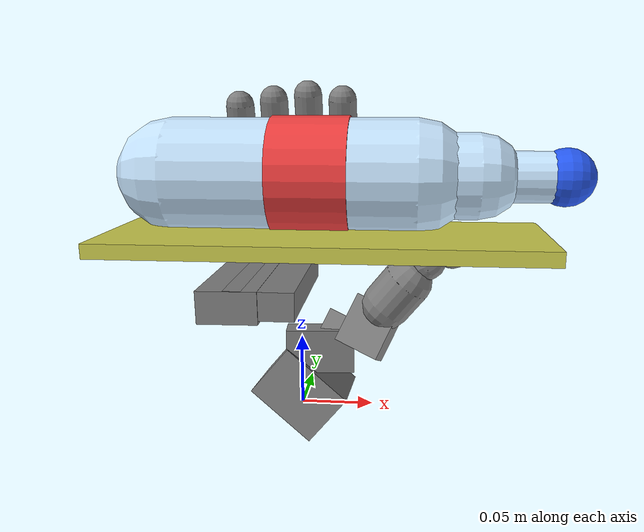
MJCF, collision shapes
<mujoco model="v2_scene_grasp_bottle_550ml">
  <size nconmax="120" />
  <include file="right_hand_v2_vertical_bottle.xml" />
  <include file="empty_bottle_550ml.xml" />

  <statistic center="-0.125 0.0 0.040" extent="0.65" meansize="0.02" />

  <visual>
    <headlight diffuse=".8 .8 .8" ambient=".25 .25 .25" specular="1 1 1" />
    <rgba force="1 0 0 1" />
    <global azimuth="118" elevation="-18" />
  </visual>

  <asset>
    <texture type="skybox" builtin="gradient" rgb1="1 1 1" rgb2="1 1 1" width="800" height="800" />
    <texture type="2d" name="groundplane" builtin="checker" mark="edge" rgb1="1 1 1" rgb2="1 1 1" markrgb="0 0 0" width="300" height="300" />
    <material name="groundplane" texture="groundplane" texuniform="true" texrepeat="5 5" reflectance="0" />
    <material name="support_pad" rgba="0.80 0.80 0.30 0.32" />
  </asset>

  <worldbody>
    <camera name="side" pos="-0.350 -0.205 0.255" xyaxes="0.52 -0.854 0 0.365 0.222 0.904" />
    <camera name="palm" pos="-0.395 0.0 0.205" xyaxes="0 -1 0 0.358 0 0.934" />

    <geom
        name="floor"
        pos="0 0 -0.25"
        size="0 0 0.01"
        type="plane"
        material="groundplane"
        contype="2"
        conaffinity="2"
    />

    <!-- 横放瓶支撑台。z 位置对齐主瓶身底部，避免 reset 时先下落一小段。 -->
    <body name="cube_support" mocap="true" pos="0.028 -0.090 0.1385">
      <geom
          name="cube_support_geom"
          type="box"
          size="0.120 0.040 0.004"
          pos="0 0 0"
          material="support_pad"
          contype="4"
          conaffinity="0"
      />
    </body>
  </worldbody>

  <sensor>
    <framepos name="cube_position" objtype="body" objname="cube" />
    <framequat name="cube_orientation" objtype="body" objname="cube" />
    <framelinvel name="cube_linvel" objtype="body" objname="cube" />
    <frameangvel name="cube_angvel" objtype="body" objname="cube" />
    <framepos name="bottle_position" objtype="body" objname="cube" />
    <framequat name="bottle_orientation" objtype="body" objname="cube" />
    <framelinvel name="bottle_linvel" objtype="body" objname="cube" />
    <frameangvel name="bottle_angvel" objtype="body" objname="cube" />
    <framepos name="cube_grasp_band_position" objtype="site" objname="bottle_grasp_band" />
    <framepos name="palm_position" objtype="site" objname="grasp_site" />
    <framepos name="th_tip_position" objtype="site" objname="th_tip" reftype="site" refname="grasp_site" />
    <framepos name="if_tip_position" objtype="site" objname="if_tip" reftype="site" refname="grasp_site" />
    <framepos name="mf_tip_position" objtype="site" objname="mf_tip" reftype="site" refname="grasp_site" />
    <framepos name="rf_tip_position" objtype="site" objname="rf_tip" reftype="site" refname="grasp_site" />
    <framepos name="pf_tip_position" objtype="site" objname="pf_tip" reftype="site" refname="grasp_site" />
  </sensor>

  <keyframe>
    <!-- Bottle B02: 放开四指预抓取，避免 reset 初始穿模导致大接触力爆炸。 -->
    <key
        name="home"
        qpos="0.3895 0.3603 0.3990 0.3691 0.3705 0.3427 0.3420 0.3164 1.20 0.1400 0.24     0.028 -0.090 0.175 0.70710678 0 0.70710678 0"
        ctrl="1.20 0.24 0.3895 0.3990 0.3705 0.3420"
        mpos="0.028 -0.090 0.1385"
        mquat="1 0 0 0"
    />
  </keyframe>
</mujoco>

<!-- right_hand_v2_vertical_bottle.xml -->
<mujoco model="Lingxi_Hand_V2_Right">
  <compiler angle="radian" meshdir="/home/ll/SRTP/Aero-Hand/handinformation/URDF/右/qbr/meshes/" />
  <option timestep="0.01" integrator="Euler" iterations="20" ls_iterations="20">
    <flag eulerdamp="disable" />
  </option>
  <custom>
    <numeric data="80" name="max_contact_points" />
    <numeric data="50" name="max_geom_pairs" />
  </custom>
  <asset>
    <material name="black" rgba="0.2 0.2 0.2 1" />
    <material name="gray" rgba="0.5 0.5 0.5 1" />
    <material name="white" rgba="0.529 0.549 0.549 1" />
    <material name="rubber" rgba="0.3 0.3 0.3 1" />
    <mesh name="v2_palm" file="v2_base_link.STL" />
    <mesh name="v2_thumb_base" file="link1.STL" />
    <mesh name="v2_thumb_mid" file="link2.STL" />
    <mesh name="v2_thumb_tip" file="link3.STL" />
    <mesh name="v2_index_proximal" file="link4.STL" />
    <mesh name="v2_index_distal" file="link5.STL" />
    <mesh name="v2_middle_proximal" file="link6.STL" />
    <mesh name="v2_middle_distal" file="link7.STL" />
    <mesh name="v2_ring_proximal" file="link8.STL" />
    <mesh name="v2_ring_distal" file="link9.STL" />
    <mesh name="v2_pinky_proximal" file="link10.STL" />
    <mesh name="v2_pinky_distal" file="link11.STL" />
  </asset>
  <default>
    <default class="v2_hand">
      <site group="4" />
      <default class="visual">
        <geom group="2" type="mesh" contype="0" conaffinity="0" density="0" material="white" />
      </default>
      <joint damping="0.02" armature="0.001559127" frictionloss="0.02" />
      <position kp="3.0" />
      <default class="mcp">
        <joint range="0 1.3963" damping="0.1" />
        <position ctrlrange="0 1.40" />
      </default>
      <default class="pip">
        <joint range="0 1.2915" damping="0.05" />
      </default>
      <default class="thumb_cmc">
        <joint range="0 1.3788" damping="0.1" />
        <position ctrlrange="0 1.38" />
      </default>
      <default class="thumb_flex">
        <joint range="0 0.5236" damping="0.05" />
      </default>
      <default class="thumb_mcp">
        <joint range="0 0.7854" damping="0.05" />
        <position ctrlrange="0 0.79" />
      </default>
    </default>
  </default>
  <contact>
    <exclude body1="palm" body2="right_index_proximal" />
    <exclude body1="palm" body2="right_middle_proximal" />
    <exclude body1="palm" body2="right_ring_proximal" />
    <exclude body1="palm" body2="right_pinky_proximal" />
    <exclude body1="palm" body2="right_thumb_base" />
    <exclude body1="palm" body2="right_thumb_mid" />
    <exclude body1="palm" body2="right_ring_distal" />
    <exclude body1="palm" body2="right_pinky_distal" />
    <exclude body1="v2_mount" body2="right_index_proximal" />
    <exclude body1="v2_mount" body2="right_middle_proximal" />
    <exclude body1="v2_mount" body2="right_ring_proximal" />
    <exclude body1="v2_mount" body2="right_pinky_proximal" />
    <exclude body1="v2_mount" body2="right_thumb_base" />
    <exclude body1="right_index_proximal" body2="right_index_distal" />
    <exclude body1="right_middle_proximal" body2="right_middle_distal" />
    <exclude body1="right_ring_proximal" body2="right_ring_distal" />
    <exclude body1="right_pinky_proximal" body2="right_pinky_distal" />
    <exclude body1="right_thumb_base" body2="right_thumb_mid" />
    <exclude body1="right_thumb_mid" body2="right_thumb_tip" />
    <exclude body1="right_index_proximal" body2="right_middle_proximal" />
    <exclude body1="right_index_distal" body2="right_middle_distal" />
    <exclude body1="right_middle_proximal" body2="right_ring_proximal" />
    <exclude body1="right_middle_distal" body2="right_ring_distal" />
    <exclude body1="right_ring_proximal" body2="right_pinky_proximal" />
    <exclude body1="right_ring_distal" body2="right_pinky_distal" />
    <exclude body1="right_index_proximal" body2="right_middle_distal" />
    <exclude body1="right_middle_proximal" body2="right_ring_distal" />
    <exclude body1="right_ring_proximal" body2="right_pinky_distal" />
    <exclude body1="right_middle_proximal" body2="right_index_distal" />
    <exclude body1="right_ring_proximal" body2="right_middle_distal" />
    <exclude body1="right_pinky_proximal" body2="right_ring_distal" />
  </contact>
  <worldbody>
    <body name="v2_mount" pos="0 0 0" euler="1.5708 0 0" childclass="v2_hand">
      <body name="palm" pos="0 0 0">
        <geom type="mesh" mesh="v2_palm" class="visual" />
        <geom name="palm_capsule_000" type="box" size="0.020037 0.025610 0.026631" pos="0.001902 0.013911 0.001441" quat="0.293817 0.302340 -0.672131 -0.608689" group="3" friction="1.25" solref="0.008 1.1" solimp="0.95 0.995 0.0005" />
        <geom name="palm_capsule_001" type="box" size="0.010722 0.019572 0.056414" pos="-0.038051 0.087840 0.002752" quat="0.709679 0 0 -0.704525" group="3" friction="1.25" solref="0.008 1.1" solimp="0.95 0.995 0.0005" />
        <geom name="palm_capsule_002" type="box" size="0.008102 0.015041 0.023052" pos="0.014905 0.046351 0.013455" quat="-0.735321 0.000192 0.677719 -0.000031" group="3" friction="1.25" solref="0.008 1.1" solimp="0.95 0.995 0.0005" />
        <geom name="palm_capsule_003" type="box" size="0.009382 0.022468 0.058021" pos="-0.017946 0.089157 0.000411" quat="-0.704114 0 0 0.710087" group="3" friction="1.25" solref="0.008 1.1" solimp="0.95 0.995 0.0005" />
        <site name="grasp_site" pos="0 0.085 -0.020" group="4" />
        <body name="right_index_proximal" pos="0.034276 0.1374 0.001">
          <inertial pos="-0.003657 0.0162 0.000274" mass="0.0686" diaginertia="7.49e-06 7.33e-06 2.82e-06" />
          <joint name="right_index_mcp" axis="1 0 0" class="mcp" />
          <geom type="mesh" mesh="v2_index_proximal" class="visual" />
          <geom name="right_index_proximal_capsule_000" type="capsule" group="3" friction="1.5" solref="0.005 1.0" solimp="0.97 0.999 0.0001" fromto="-0.003733 0.008071 0.003736 -0.003793 0.026509 -0.000839" size="0.010229" />
          <body name="right_index_distal" pos="0.00084336 0.031988 -0.0026473">
            <inertial pos="-0.00450 0.0246 0.00927" mass="0.0755" diaginertia="1.58e-05 1.57e-05 2.47e-06" />
            <joint name="right_index_pip" axis="1 0 0" class="pip" />
            <geom type="mesh" mesh="v2_index_distal" class="visual" />
            <geom name="right_index_distal_capsule_000" type="capsule" group="3" friction="1.5" solref="0.005 1.0" solimp="0.97 0.999 0.0001" fromto="-0.004533 0.003643 0.004505 -0.004547 0.015148 0.007211" size="0.008789" />
            <geom name="right_index_distal_capsule_001" type="capsule" group="3" friction="1.5" solref="0.005 1.0" solimp="0.97 0.999 0.0001" fromto="-0.004569 0.032374 0.011263 -0.004584 0.043669 0.013920" size="0.008894" />
            <site name="if_tip" pos="-0.004 0.052 0.005" group="4" />
            <site name="if_tip_t00" pos="-0.007 0.042 0.005" size="0.003" />
            <site name="if_tip_t01" pos="-0.005 0.042 0.005" size="0.003" />
            <site name="if_tip_t02" pos="-0.003 0.042 0.005" size="0.003" />
            <site name="if_tip_t03" pos="-0.001 0.042 0.005" size="0.003" />
            <site name="if_tip_t04" pos="-0.007 0.045 0.005" size="0.003" />
            <site name="if_tip_t05" pos="-0.005 0.045 0.005" size="0.003" />
            <site name="if_tip_t06" pos="-0.003 0.045 0.005" size="0.003" />
            <site name="if_tip_t07" pos="-0.001 0.045 0.005" size="0.003" />
            <site name="if_tip_t08" pos="-0.007 0.048 0.005" size="0.003" />
            <site name="if_tip_t09" pos="-0.005 0.048 0.005" size="0.003" />
            <site name="if_tip_t10" pos="-0.003 0.048 0.005" size="0.003" />
            <site name="if_tip_t11" pos="-0.001 0.048 0.005" size="0.003" />
            <site name="if_tip_t12" pos="-0.007 0.051 0.005" size="0.003" />
            <site name="if_tip_t13" pos="-0.005 0.051 0.005" size="0.003" />
            <site name="if_tip_t14" pos="-0.003 0.051 0.005" size="0.003" />
            <site name="if_tip_t15" pos="-0.001 0.051 0.005" size="0.003" />
          </body>
        </body>
        <body name="right_middle_proximal" pos="0.012276 0.14055 0.001">
          <inertial pos="-0.003657 0.0162 0.000274" mass="0.0686" diaginertia="7.49e-06 7.33e-06 2.82e-06" />
          <joint name="right_middle_mcp" axis="1 0 0" class="mcp" />
          <geom type="mesh" mesh="v2_middle_proximal" class="visual" />
          <geom name="right_middle_proximal_capsule_000" type="capsule" group="3" friction="1.5" solref="0.005 1.0" solimp="0.97 0.999 0.0001" fromto="-0.003733 0.008071 0.003736 -0.003793 0.026509 -0.000839" size="0.010229" />
          <body name="right_middle_distal" pos="0 0.02968 -0.0024563">
            <inertial pos="-0.00366 0.0269 0.00908" mass="0.0755" diaginertia="1.58e-05 1.57e-05 2.47e-06" />
            <joint name="right_middle_pip" axis="1 0 0" class="pip" />
            <geom type="mesh" mesh="v2_middle_distal" class="visual" />
            <geom name="right_middle_distal_capsule_000" type="capsule" group="3" friction="1.5" solref="0.005 1.0" solimp="0.97 0.999 0.0001" fromto="-0.003689 0.005951 0.004314 -0.003704 0.017455 0.007020" size="0.008789" />
            <geom name="right_middle_distal_capsule_001" type="capsule" group="3" friction="1.5" solref="0.005 1.0" solimp="0.97 0.999 0.0001" fromto="-0.003726 0.034682 0.011072 -0.003740 0.045977 0.013729" size="0.008894" />
            <site name="mf_tip" pos="-0.004 0.052 0.005" group="4" />
            <site name="mf_tip_t00" pos="-0.007 0.042 0.005" size="0.003" />
            <site name="mf_tip_t01" pos="-0.005 0.042 0.005" size="0.003" />
            <site name="mf_tip_t02" pos="-0.003 0.042 0.005" size="0.003" />
            <site name="mf_tip_t03" pos="-0.001 0.042 0.005" size="0.003" />
            <site name="mf_tip_t04" pos="-0.007 0.045 0.005" size="0.003" />
            <site name="mf_tip_t05" pos="-0.005 0.045 0.005" size="0.003" />
            <site name="mf_tip_t06" pos="-0.003 0.045 0.005" size="0.003" />
            <site name="mf_tip_t07" pos="-0.001 0.045 0.005" size="0.003" />
            <site name="mf_tip_t08" pos="-0.007 0.048 0.005" size="0.003" />
            <site name="mf_tip_t09" pos="-0.005 0.048 0.005" size="0.003" />
            <site name="mf_tip_t10" pos="-0.003 0.048 0.005" size="0.003" />
            <site name="mf_tip_t11" pos="-0.001 0.048 0.005" size="0.003" />
            <site name="mf_tip_t12" pos="-0.007 0.051 0.005" size="0.003" />
            <site name="mf_tip_t13" pos="-0.005 0.051 0.005" size="0.003" />
            <site name="mf_tip_t14" pos="-0.003 0.051 0.005" size="0.003" />
            <site name="mf_tip_t15" pos="-0.001 0.051 0.005" size="0.003" />
          </body>
        </body>
        <body name="right_ring_proximal" pos="-0.009724 0.1374 0.001">
          <inertial pos="-0.003657 0.0162 0.000274" mass="0.0686" diaginertia="7.49e-06 7.33e-06 2.82e-06" />
          <joint name="right_ring_mcp" axis="1 0 0" class="mcp" />
          <geom type="mesh" mesh="v2_ring_proximal" class="visual" />
          <geom name="right_ring_proximal_capsule_000" type="capsule" group="3" friction="1.5" solref="0.005 1.0" solimp="0.97 0.999 0.0001" fromto="-0.003733 0.008071 0.003736 -0.003793 0.026509 -0.000839" size="0.010229" />
          <body name="right_ring_distal" pos="0 0.02968 -0.0024563">
            <inertial pos="-0.00366 0.0269 0.00908" mass="0.0755" diaginertia="1.58e-05 1.57e-05 2.47e-06" />
            <joint name="right_ring_pip" axis="1 0 0" class="pip" />
            <geom type="mesh" mesh="v2_ring_distal" class="visual" />
            <geom name="right_ring_distal_capsule_000" type="capsule" group="3" friction="1.5" solref="0.005 1.0" solimp="0.97 0.999 0.0001" fromto="-0.003689 0.005951 0.004314 -0.003704 0.017455 0.007020" size="0.008789" />
            <geom name="right_ring_distal_capsule_001" type="capsule" group="3" friction="1.5" solref="0.005 1.0" solimp="0.97 0.999 0.0001" fromto="-0.003726 0.034682 0.011072 -0.003740 0.045977 0.013729" size="0.008894" />
            <site name="rf_tip" pos="-0.004 0.052 0.005" group="4" />
            <site name="rf_tip_t00" pos="-0.007 0.042 0.005" size="0.003" />
            <site name="rf_tip_t01" pos="-0.005 0.042 0.005" size="0.003" />
            <site name="rf_tip_t02" pos="-0.003 0.042 0.005" size="0.003" />
            <site name="rf_tip_t03" pos="-0.001 0.042 0.005" size="0.003" />
            <site name="rf_tip_t04" pos="-0.007 0.045 0.005" size="0.003" />
            <site name="rf_tip_t05" pos="-0.005 0.045 0.005" size="0.003" />
            <site name="rf_tip_t06" pos="-0.003 0.045 0.005" size="0.003" />
            <site name="rf_tip_t07" pos="-0.001 0.045 0.005" size="0.003" />
            <site name="rf_tip_t08" pos="-0.007 0.048 0.005" size="0.003" />
            <site name="rf_tip_t09" pos="-0.005 0.048 0.005" size="0.003" />
            <site name="rf_tip_t10" pos="-0.003 0.048 0.005" size="0.003" />
            <site name="rf_tip_t11" pos="-0.001 0.048 0.005" size="0.003" />
            <site name="rf_tip_t12" pos="-0.007 0.051 0.005" size="0.003" />
            <site name="rf_tip_t13" pos="-0.005 0.051 0.005" size="0.003" />
            <site name="rf_tip_t14" pos="-0.003 0.051 0.005" size="0.003" />
            <site name="rf_tip_t15" pos="-0.001 0.051 0.005" size="0.003" />
          </body>
        </body>
        <body name="right_pinky_proximal" pos="-0.031724 0.13417 0.001">
          <inertial pos="-0.003657 0.0162 0.000274" mass="0.0686" diaginertia="7.49e-06 7.33e-06 2.82e-06" />
          <joint name="right_pinky_mcp" axis="1 0 0" class="mcp" />
          <geom type="mesh" mesh="v2_pinky_proximal" class="visual" />
          <geom name="right_pinky_proximal_capsule_000" type="capsule" group="3" friction="1.5" solref="0.005 1.0" solimp="0.97 0.999 0.0001" fromto="-0.003733 0.008071 0.003736 -0.003793 0.026509 -0.000839" size="0.010229" />
          <body name="right_pinky_distal" pos="0.00084336 0.031988 -0.0026473">
            <inertial pos="-0.00450 0.0246 0.00927" mass="0.0755" diaginertia="1.58e-05 1.57e-05 2.47e-06" />
            <joint name="right_pinky_pip" axis="1 0 0" class="pip" />
            <geom type="mesh" mesh="v2_pinky_distal" class="visual" />
            <geom name="right_pinky_distal_capsule_000" type="capsule" group="3" friction="1.5" solref="0.005 1.0" solimp="0.97 0.999 0.0001" fromto="-0.004533 0.003643 0.004505 -0.004547 0.015148 0.007211" size="0.008789" />
            <geom name="right_pinky_distal_capsule_001" type="capsule" group="3" friction="1.5" solref="0.005 1.0" solimp="0.97 0.999 0.0001" fromto="-0.004569 0.032374 0.011263 -0.004584 0.043669 0.013920" size="0.008894" />
            <site name="pf_tip" pos="-0.004 0.052 0.005" group="4" />
            <site name="pf_tip_t00" pos="-0.007 0.042 0.005" size="0.003" />
            <site name="pf_tip_t01" pos="-0.005 0.042 0.005" size="0.003" />
            <site name="pf_tip_t02" pos="-0.003 0.042 0.005" size="0.003" />
            <site name="pf_tip_t03" pos="-0.001 0.042 0.005" size="0.003" />
            <site name="pf_tip_t04" pos="-0.007 0.045 0.005" size="0.003" />
            <site name="pf_tip_t05" pos="-0.005 0.045 0.005" size="0.003" />
            <site name="pf_tip_t06" pos="-0.003 0.045 0.005" size="0.003" />
            <site name="pf_tip_t07" pos="-0.001 0.045 0.005" size="0.003" />
            <site name="pf_tip_t08" pos="-0.007 0.048 0.005" size="0.003" />
            <site name="pf_tip_t09" pos="-0.005 0.048 0.005" size="0.003" />
            <site name="pf_tip_t10" pos="-0.003 0.048 0.005" size="0.003" />
            <site name="pf_tip_t11" pos="-0.001 0.048 0.005" size="0.003" />
            <site name="pf_tip_t12" pos="-0.007 0.051 0.005" size="0.003" />
            <site name="pf_tip_t13" pos="-0.005 0.051 0.005" size="0.003" />
            <site name="pf_tip_t14" pos="-0.003 0.051 0.005" size="0.003" />
            <site name="pf_tip_t15" pos="-0.001 0.051 0.005" size="0.003" />
          </body>
        </body>
        <body name="right_thumb_base" pos="0.028693 0.069894 0.010325" quat="0.999048 0 0 0.043619">
          <inertial pos="0.013775 -0.009814 0.002084" mass="0.08488" diaginertia="1.03e-05 9.49e-06 5.67e-06" />
          <joint name="right_thumb_cmc_abd" axis="0 -1 0" class="thumb_cmc" />
          <geom type="mesh" mesh="v2_thumb_base" class="visual" />
          <geom name="right_thumb_base_capsule_000" type="box" size="0.015325 0.013443 0.017225" pos="0.019292 -0.009593 0.002956" quat="0.237188 0.108156 0.803420 0.535313" group="3" friction="1.5" solref="0.005 1.0" solimp="0.97 0.999 0.0001" />
          <geom name="right_thumb_base_capsule_001" type="box" size="0.008344 0.008646 0.008403" pos="-0.002984 -0.008688 -0.002984" quat="0.237188 0.108156 0.803420 0.535313" group="3" friction="1.5" solref="0.005 1.0" solimp="0.97 0.999 0.0001" />
          <body name="right_thumb_mid" pos="0.02679 -0.0045 0.0045976" quat="0.641137 -0.027549 -0.766225 -0.032924">
            <inertial pos="0 0.01832 -0.01287" mass="0.18907" diaginertia="4.62e-05 4.25e-05 1.60e-05" />
            <joint name="right_thumb_cmc_flex" axis="1 0 0" class="thumb_flex" />
            <geom type="mesh" mesh="v2_thumb_mid" class="visual" />
            <geom name="right_thumb_mid_capsule_000" type="capsule" group="3" friction="1.5" solref="0.005 1.0" solimp="0.97 0.999 0.0001" fromto="0.000259 0.029240 -0.018406 0.000155 0.011437 -0.004140" size="0.016560" />
            <body name="right_thumb_tip" pos="0.0055478 0.0413 -0.024172">
              <inertial pos="-0.005551 0.005391 -0.014448" mass="0.07660" diaginertia="8.30e-06 8.00e-06 4.06e-06" />
              <joint name="right_thumb_mcp" axis="1 0 0" class="thumb_mcp" />
              <geom type="mesh" mesh="v2_thumb_tip" class="visual" />
              <geom name="right_thumb_tip_capsule_000" type="capsule" group="3" friction="1.5" solref="0.005 1.0" solimp="0.97 0.999 0.0001" fromto="-0.005496 0.010877 -0.025065 -0.005505 0.009894 -0.023324" size="0.011363" />
              <geom name="right_thumb_tip_capsule_001" type="capsule" group="3" friction="1.5" solref="0.005 1.0" solimp="0.97 0.999 0.0001" fromto="-0.005586 0.001141 -0.007809 -0.005595 0.000159 -0.006067" size="0.010936" />
              <site name="th_tip" pos="-0.006 0.021 -0.020" group="4" />
              <site name="th_tip_t00" pos="-0.010 0.008 -0.020" size="0.003" />
              <site name="th_tip_t01" pos="-0.007 0.008 -0.020" size="0.003" />
              <site name="th_tip_t02" pos="-0.004 0.008 -0.020" size="0.003" />
              <site name="th_tip_t03" pos="-0.001 0.008 -0.020" size="0.003" />
              <site name="th_tip_t04" pos="-0.010 0.012 -0.020" size="0.003" />
              <site name="th_tip_t05" pos="-0.007 0.012 -0.020" size="0.003" />
              <site name="th_tip_t06" pos="-0.004 0.012 -0.020" size="0.003" />
              <site name="th_tip_t07" pos="-0.001 0.012 -0.020" size="0.003" />
              <site name="th_tip_t08" pos="-0.010 0.016 -0.020" size="0.003" />
              <site name="th_tip_t09" pos="-0.007 0.016 -0.020" size="0.003" />
              <site name="th_tip_t10" pos="-0.004 0.016 -0.020" size="0.003" />
              <site name="th_tip_t11" pos="-0.001 0.016 -0.020" size="0.003" />
              <site name="th_tip_t12" pos="-0.010 0.020 -0.020" size="0.003" />
              <site name="th_tip_t13" pos="-0.007 0.020 -0.020" size="0.003" />
              <site name="th_tip_t14" pos="-0.004 0.020 -0.020" size="0.003" />
              <site name="th_tip_t15" pos="-0.001 0.020 -0.020" size="0.003" />
            </body>
          </body>
        </body>
      </body>
    </body>
  </worldbody>
  <actuator>
    <position name="hw_thumb_rot" joint="right_thumb_cmc_abd" class="thumb_cmc" kp="5" />
    <position name="hw_thumb_flex" joint="right_thumb_mcp" class="thumb_mcp" kp="3" />
    <position name="hw_index" joint="right_index_mcp" class="mcp" kp="3" />
    <position name="hw_middle" joint="right_middle_mcp" class="mcp" kp="3" />
    <position name="hw_ring" joint="right_ring_mcp" class="mcp" kp="3" />
    <position name="hw_pinky" joint="right_pinky_mcp" class="mcp" kp="3" />
  </actuator>
  <sensor>
    <jointpos name="hw_pos_thumb_rot" joint="right_thumb_cmc_abd" />
    <jointpos name="hw_pos_thumb_flex" joint="right_thumb_mcp" />
    <jointpos name="hw_pos_index" joint="right_index_mcp" />
    <jointpos name="hw_pos_middle" joint="right_middle_mcp" />
    <jointpos name="hw_pos_ring" joint="right_ring_mcp" />
    <jointpos name="hw_pos_pinky" joint="right_pinky_mcp" />
    <touch name="hw_tip_frc_thumb_00" site="th_tip_t00" />
    <touch name="hw_tip_frc_thumb_01" site="th_tip_t01" />
    <touch name="hw_tip_frc_thumb_02" site="th_tip_t02" />
    <touch name="hw_tip_frc_thumb_03" site="th_tip_t03" />
    <touch name="hw_tip_frc_thumb_04" site="th_tip_t04" />
    <touch name="hw_tip_frc_thumb_05" site="th_tip_t05" />
    <touch name="hw_tip_frc_thumb_06" site="th_tip_t06" />
    <touch name="hw_tip_frc_thumb_07" site="th_tip_t07" />
    <touch name="hw_tip_frc_thumb_08" site="th_tip_t08" />
    <touch name="hw_tip_frc_thumb_09" site="th_tip_t09" />
    <touch name="hw_tip_frc_thumb_10" site="th_tip_t10" />
    <touch name="hw_tip_frc_thumb_11" site="th_tip_t11" />
    <touch name="hw_tip_frc_thumb_12" site="th_tip_t12" />
    <touch name="hw_tip_frc_thumb_13" site="th_tip_t13" />
    <touch name="hw_tip_frc_thumb_14" site="th_tip_t14" />
    <touch name="hw_tip_frc_thumb_15" site="th_tip_t15" />
    <touch name="hw_tip_frc_index_00" site="if_tip_t00" />
    <touch name="hw_tip_frc_index_01" site="if_tip_t01" />
    <touch name="hw_tip_frc_index_02" site="if_tip_t02" />
    <touch name="hw_tip_frc_index_03" site="if_tip_t03" />
    <touch name="hw_tip_frc_index_04" site="if_tip_t04" />
    <touch name="hw_tip_frc_index_05" site="if_tip_t05" />
    <touch name="hw_tip_frc_index_06" site="if_tip_t06" />
    <touch name="hw_tip_frc_index_07" site="if_tip_t07" />
    <touch name="hw_tip_frc_index_08" site="if_tip_t08" />
    <touch name="hw_tip_frc_index_09" site="if_tip_t09" />
    <touch name="hw_tip_frc_index_10" site="if_tip_t10" />
    <touch name="hw_tip_frc_index_11" site="if_tip_t11" />
    <touch name="hw_tip_frc_index_12" site="if_tip_t12" />
    <touch name="hw_tip_frc_index_13" site="if_tip_t13" />
    <touch name="hw_tip_frc_index_14" site="if_tip_t14" />
    <touch name="hw_tip_frc_index_15" site="if_tip_t15" />
    <touch name="hw_tip_frc_middle_00" site="mf_tip_t00" />
    <touch name="hw_tip_frc_middle_01" site="mf_tip_t01" />
    <touch name="hw_tip_frc_middle_02" site="mf_tip_t02" />
    <touch name="hw_tip_frc_middle_03" site="mf_tip_t03" />
    <touch name="hw_tip_frc_middle_04" site="mf_tip_t04" />
    <touch name="hw_tip_frc_middle_05" site="mf_tip_t05" />
    <touch name="hw_tip_frc_middle_06" site="mf_tip_t06" />
    <touch name="hw_tip_frc_middle_07" site="mf_tip_t07" />
    <touch name="hw_tip_frc_middle_08" site="mf_tip_t08" />
    <touch name="hw_tip_frc_middle_09" site="mf_tip_t09" />
    <touch name="hw_tip_frc_middle_10" site="mf_tip_t10" />
    <touch name="hw_tip_frc_middle_11" site="mf_tip_t11" />
    <touch name="hw_tip_frc_middle_12" site="mf_tip_t12" />
    <touch name="hw_tip_frc_middle_13" site="mf_tip_t13" />
    <touch name="hw_tip_frc_middle_14" site="mf_tip_t14" />
    <touch name="hw_tip_frc_middle_15" site="mf_tip_t15" />
    <touch name="hw_tip_frc_ring_00" site="rf_tip_t00" />
    <touch name="hw_tip_frc_ring_01" site="rf_tip_t01" />
    <touch name="hw_tip_frc_ring_02" site="rf_tip_t02" />
    <touch name="hw_tip_frc_ring_03" site="rf_tip_t03" />
    <touch name="hw_tip_frc_ring_04" site="rf_tip_t04" />
    <touch name="hw_tip_frc_ring_05" site="rf_tip_t05" />
    <touch name="hw_tip_frc_ring_06" site="rf_tip_t06" />
    <touch name="hw_tip_frc_ring_07" site="rf_tip_t07" />
    <touch name="hw_tip_frc_ring_08" site="rf_tip_t08" />
    <touch name="hw_tip_frc_ring_09" site="rf_tip_t09" />
    <touch name="hw_tip_frc_ring_10" site="rf_tip_t10" />
    <touch name="hw_tip_frc_ring_11" site="rf_tip_t11" />
    <touch name="hw_tip_frc_ring_12" site="rf_tip_t12" />
    <touch name="hw_tip_frc_ring_13" site="rf_tip_t13" />
    <touch name="hw_tip_frc_ring_14" site="rf_tip_t14" />
    <touch name="hw_tip_frc_ring_15" site="rf_tip_t15" />
    <touch name="hw_tip_frc_pinky_00" site="pf_tip_t00" />
    <touch name="hw_tip_frc_pinky_01" site="pf_tip_t01" />
    <touch name="hw_tip_frc_pinky_02" site="pf_tip_t02" />
    <touch name="hw_tip_frc_pinky_03" site="pf_tip_t03" />
    <touch name="hw_tip_frc_pinky_04" site="pf_tip_t04" />
    <touch name="hw_tip_frc_pinky_05" site="pf_tip_t05" />
    <touch name="hw_tip_frc_pinky_06" site="pf_tip_t06" />
    <touch name="hw_tip_frc_pinky_07" site="pf_tip_t07" />
    <touch name="hw_tip_frc_pinky_08" site="pf_tip_t08" />
    <touch name="hw_tip_frc_pinky_09" site="pf_tip_t09" />
    <touch name="hw_tip_frc_pinky_10" site="pf_tip_t10" />
    <touch name="hw_tip_frc_pinky_11" site="pf_tip_t11" />
    <touch name="hw_tip_frc_pinky_12" site="pf_tip_t12" />
    <touch name="hw_tip_frc_pinky_13" site="pf_tip_t13" />
    <touch name="hw_tip_frc_pinky_14" site="pf_tip_t14" />
    <touch name="hw_tip_frc_pinky_15" site="pf_tip_t15" />
  </sensor>
  <equality>
    <joint joint1="right_index_pip" joint2="right_index_mcp" polycoef="0 0.925 0 0 0" solref="0.005 1" solimp="0.95 0.99 0.001" />
    <joint joint1="right_middle_pip" joint2="right_middle_mcp" polycoef="0 0.925 0 0 0" solref="0.005 1" solimp="0.95 0.99 0.001" />
    <joint joint1="right_ring_pip" joint2="right_ring_mcp" polycoef="0 0.925 0 0 0" solref="0.005 1" solimp="0.95 0.99 0.001" />
    <joint joint1="right_pinky_pip" joint2="right_pinky_mcp" polycoef="0 0.925 0 0 0" solref="0.005 1" solimp="0.95 0.99 0.001" />
    <joint joint1="right_thumb_cmc_flex" joint2="right_thumb_cmc_abd" polycoef="0 0.16 0 0 0" solref="0.005 1" solimp="0.95 0.99 0.001" />
  </equality>
</mujoco>

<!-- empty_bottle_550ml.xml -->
<mujoco>
  <!-- 550ml 农夫山泉空瓶近似模型。
       目标先做场景初始化和可视化检查，因此这里采用刚体分段几何近似:
       主瓶身 + 肩部 + 瓶颈 + 瓶盖。
       瓶体为空且略有弹性, 因此接触参数比当前方块更软, 质量也更轻。 -->
  <default>
    <default class="bottle_shell">
      <geom
          friction="0.9 0.02 0.005"
          conaffinity="7"
          condim="4"
          solref="0.015 1.0"
          solimp="0.90 0.97 0.001"
      />
    </default>
  </default>

  <asset>
    <material name="bottle_clear" rgba="0.78 0.90 1.00 0.28" specular="0.2" shininess="0.15"/>
    <material name="bottle_label" rgba="0.95 0.25 0.25 1"/>
    <material name="bottle_cap" rgba="0.15 0.35 0.95 1"/>
  </asset>

  <worldbody>
    <!-- 总高度约 22.7cm, 主体直径约 6.4cm。
         body 原点放在标签带附近, 方便后续把抓取中心对到瓶身中段。 -->
    <body name="cube" pos="0.028 -0.066 0.171" quat="0.70710678 0 0.70710678 0" childclass="bottle_shell">
      <freejoint name="cube_freejoint"/>

      <!-- 主瓶身 -->
      <geom
          name="cube"
          type="capsule"
          fromto="0 0 -0.090 0 0 0.050"
          size="0.0325"
          mass="0.016"
          group="1"
          material="bottle_clear"
      />

      <!-- 标签带, 给视觉一个更像矿泉水瓶的抓取区域 -->
      <geom
          name="bottle_label_band"
          type="cylinder"
          size="0.0335 0.022"
          pos="0 0 -0.010"
          mass="0"
          group="1"
          material="bottle_label"
          contype="0"
          conaffinity="0"
          density="0"
      />

      <!-- 肩部 -->
      <geom
          name="bottle_shoulder"
          type="capsule"
          fromto="0 0 0.040 0 0 0.084"
          size="0.0245"
          mass="0.002"
          group="1"
          material="bottle_clear"
      />

      <!-- 瓶颈 -->
      <geom
          name="bottle_neck"
          type="capsule"
          fromto="0 0 0.088 0 0 0.124"
          size="0.0145"
          mass="0.0015"
          group="1"
          material="bottle_clear"
      />

      <!-- 瓶盖 -->
      <geom
          name="bottle_cap"
          type="sphere"
          size="0.0165"
          pos="0 0 0.132"
          mass="0.001"
          group="1"
          material="bottle_cap"
      />

      <site name="cube_center" pos="0 0 0.020" size="0.006" rgba="0 0.8 0 0.7" group="4"/>
      <site name="bottle_center" pos="0 0 0.020" size="0.006" rgba="0 0.8 0 0.7" group="4"/>
      <site name="bottle_grasp_band" pos="0 0 -0.010" size="0.038 0.038 0.024" type="ellipsoid" rgba="1 0 0 0.10" group="4"/>
    </body>
  </worldbody>
</mujoco>
